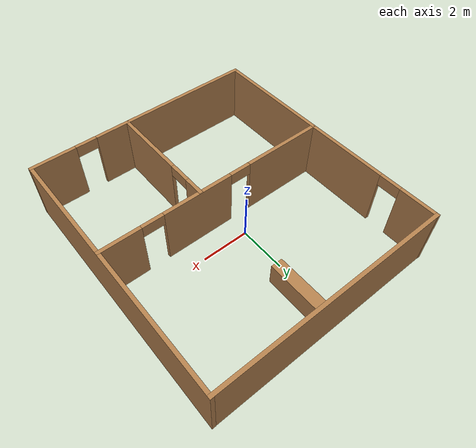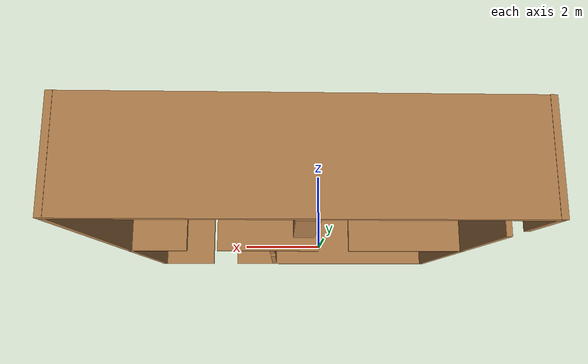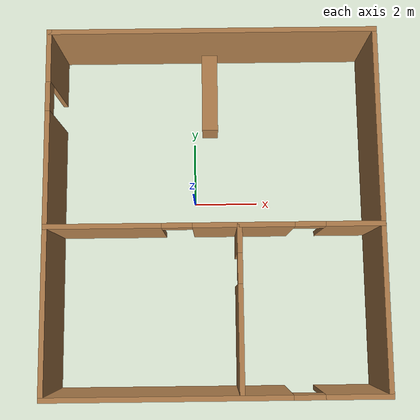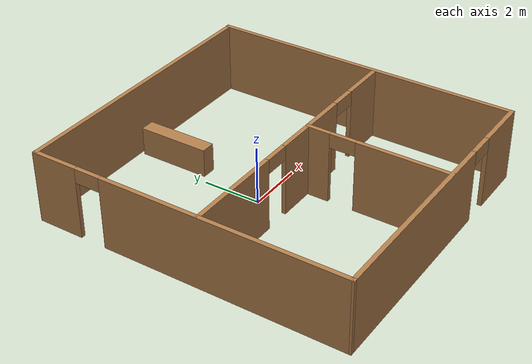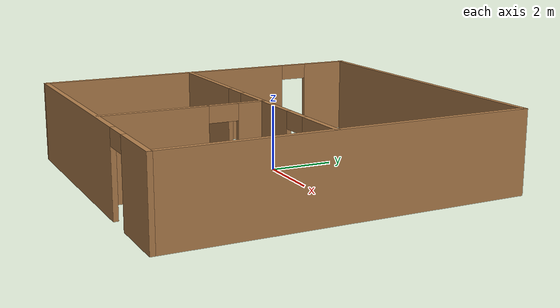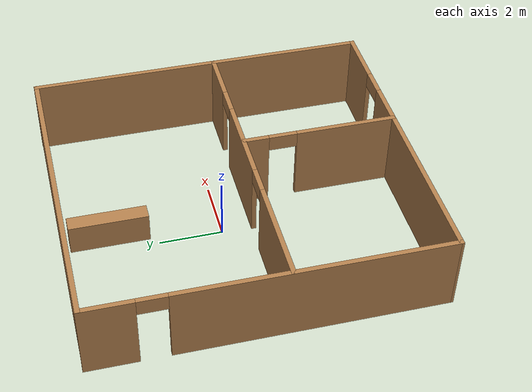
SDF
<?xml version='1.0'?>
<sdf version='1.6'>
  <model name='at_home_2019_empty'>
    <pose frame=''>0.5 -0.5 0 0 0 0</pose>

    <link name='box_link'>
      <pose frame=''>0.0 4 0.5 0 0 0</pose>
      <collision name='collision'>
        <max_contacts>10</max_contacts>
        <geometry>
          <box>
            <size>0.5 2.5 1</size>
          </box>
        </geometry>
      </collision>
      <visual name='visual'>
        <geometry>
          <box>
            <size>0.5 2.5 1</size>
          </box>
        </geometry>
        <material>
          <script>
            <name>Gazebo/Wood</name>
            <uri>file://media/materials/scripts/gazebo.material</uri>
          </script>
        </material>
      </visual>
    </link>

    <link name='Wall_11'>
      <pose frame=''>0.087 -0.5 0 0 0 3.14159</pose>
      <visual name='Wall_11_Visual_0'>
        <pose frame=''>-4.1285 0 1.25 0 -0 0</pose>
        <geometry>
          <box>
            <size>1.743 0.15 2.5</size>
          </box>
        </geometry>
        <material>
          <script>
            <uri>file://media/materials/scripts/gazebo.material</uri>
            <name>Gazebo/Wood</name>
          </script>
          <ambient>1 1 1 1</ambient>
        </material>
        <meta>
          <layer>0</layer>
        </meta>
      </visual>
      <collision name='Wall_11_Collision_0'>
        <geometry>
          <box>
            <size>1.743 0.15 2.5</size>
          </box>
        </geometry>
        <pose frame=''>-4.1285 0 1.25 0 -0 0</pose>
      </collision>
      <visual name='Wall_11_Visual_1'>
        <pose frame=''>-0.862163 0 1.25 0 -0 0</pose>
        <geometry>
          <box>
            <size>2.98967 0.15 2.5</size>
          </box>
        </geometry>
        <material>
          <script>
            <uri>file://media/materials/scripts/gazebo.material</uri>
            <name>Gazebo/Wood</name>
          </script>
          <ambient>1 1 1 1</ambient>
        </material>
        <meta>
          <layer>0</layer>
        </meta>
      </visual>
      <collision name='Wall_11_Collision_1'>
        <geometry>
          <box>
            <size>2.98967 0.15 2.5</size>
          </box>
        </geometry>
        <pose frame=''>-0.862163 0 1.25 0 -0 0</pose>
      </collision>
      <visual name='Wall_11_Visual_2'>
        <pose frame=''>3.26634 0 1.25 0 -0 0</pose>
        <geometry>
          <box>
            <size>3.46733 0.15 2.5</size>
          </box>
        </geometry>
        <material>
          <script>
            <uri>file://media/materials/scripts/gazebo.material</uri>
            <name>Gazebo/Wood</name>
          </script>
          <ambient>1 1 1 1</ambient>
        </material>
        <meta>
          <layer>0</layer>
        </meta>
      </visual>
      <collision name='Wall_11_Collision_2'>
        <geometry>
          <box>
            <size>3.46733 0.15 2.5</size>
          </box>
        </geometry>
        <pose frame=''>3.26634 0 1.25 0 -0 0</pose>
      </collision>
      <visual name='Wall_11_Visual_3'>
        <pose frame=''>-2.807 0 2.25 0 -0 0</pose>
        <geometry>
          <box>
            <size>0.9 0.15 0.5</size>
          </box>
        </geometry>
        <material>
          <script>
            <uri>file://media/materials/scripts/gazebo.material</uri>
            <name>Gazebo/Wood</name>
          </script>
          <ambient>1 1 1 1</ambient>
        </material>
        <meta>
          <layer>0</layer>
        </meta>
      </visual>
      <collision name='Wall_11_Collision_3'>
        <geometry>
          <box>
            <size>0.9 0.15 0.5</size>
          </box>
        </geometry>
        <pose frame=''>-2.807 0 2.25 0 -0 0</pose>
      </collision>
      <visual name='Wall_11_Visual_4'>
        <pose frame=''>1.08267 0 2.25 0 -0 0</pose>
        <geometry>
          <box>
            <size>0.9 0.15 0.5</size>
          </box>
        </geometry>
        <material>
          <script>
            <uri>file://media/materials/scripts/gazebo.material</uri>
            <name>Gazebo/Wood</name>
          </script>
          <ambient>1 1 1 1</ambient>
        </material>
        <meta>
          <layer>0</layer>
        </meta>
      </visual>
      <collision name='Wall_11_Collision_4'>
        <geometry>
          <box>
            <size>0.9 0.15 0.5</size>
          </box>
        </geometry>
        <pose frame=''>1.08267 0 2.25 0 -0 0</pose>
      </collision>
    </link>
    <link name='Wall_13'>
      <pose frame=''>0.830455 -2.95 0 0 -0 1.5708</pose>
      <visual name='Wall_13_Visual_0'>
        <pose frame=''>-0.879017 0 1.25 0 -0 0</pose>
        <geometry>
          <box>
            <size>3.24197 0.15 2.5</size>
          </box>
        </geometry>
        <material>
          <script>
            <uri>file://media/materials/scripts/gazebo.material</uri>
            <name>Gazebo/Wood</name>
          </script>
          <ambient>1 1 1 1</ambient>
        </material>
        <meta>
          <layer>0</layer>
        </meta>
      </visual>
      <collision name='Wall_13_Collision_0'>
        <geometry>
          <box>
            <size>3.24197 0.15 2.5</size>
          </box>
        </geometry>
        <pose frame=''>-0.879017 0 1.25 0 -0 0</pose>
      </collision>
      <visual name='Wall_13_Visual_1'>
        <pose frame=''>2.07098 0 1.25 0 -0 0</pose>
        <geometry>
          <box>
            <size>0.858033 0.15 2.5</size>
          </box>
        </geometry>
        <material>
          <script>
            <uri>file://media/materials/scripts/gazebo.material</uri>
            <name>Gazebo/Wood</name>
          </script>
          <ambient>1 1 1 1</ambient>
        </material>
        <meta>
          <layer>0</layer>
        </meta>
      </visual>
      <collision name='Wall_13_Collision_1'>
        <geometry>
          <box>
            <size>0.858033 0.15 2.5</size>
          </box>
        </geometry>
        <pose frame=''>2.07098 0 1.25 0 -0 0</pose>
      </collision>
      <visual name='Wall_13_Visual_2'>
        <pose frame=''>1.19197 0 2.25 0 -0 0</pose>
        <geometry>
          <box>
            <size>0.9 0.15 0.5</size>
          </box>
        </geometry>
        <material>
          <script>
            <uri>file://media/materials/scripts/gazebo.material</uri>
            <name>Gazebo/Wood</name>
          </script>
          <ambient>1 1 1 1</ambient>
        </material>
        <meta>
          <layer>0</layer>
        </meta>
      </visual>
      <collision name='Wall_13_Collision_2'>
        <geometry>
          <box>
            <size>0.9 0.15 0.5</size>
          </box>
        </geometry>
        <pose frame=''>1.19197 0 2.25 0 -0 0</pose>
      </collision>
    </link>
    <link name='Wall_6'>
      <collision name='Wall_6_Collision'>
        <geometry>
          <box>
            <size>10 0.15 2.5</size>
          </box>
        </geometry>
        <pose frame=''>0 0 1.25 0 -0 0</pose>
      </collision>
      <visual name='Wall_6_Visual'>
        <pose frame=''>0 0 1.25 0 -0 0</pose>
        <geometry>
          <box>
            <size>10 0.15 2.5</size>
          </box>
        </geometry>
        <material>
          <script>
            <uri>file://media/materials/scripts/gazebo.material</uri>
            <name>Gazebo/Wood</name>
          </script>
          <ambient>1 1 1 1</ambient>
        </material>
        <meta>
          <layer>0</layer>
        </meta>
      </visual>
      <pose frame=''>0.089544 5.44849 0 0 -0 0</pose>
    </link>
    <link name='Wall_7'>
      <collision name='Wall_7_Collision'>
        <geometry>
          <box>
            <size>11 0.15 2.5</size>
          </box>
        </geometry>
        <pose frame=''>0 0 1.25 0 -0 0</pose>
      </collision>
      <visual name='Wall_7_Visual'>
        <pose frame=''>0 0 1.25 0 -0 0</pose>
        <geometry>
          <box>
            <size>11 0.15 2.5</size>
          </box>
        </geometry>
        <material>
          <script>
            <uri>file://media/materials/scripts/gazebo.material</uri>
            <name>Gazebo/Wood</name>
          </script>
          <ambient>1 1 1 1</ambient>
        </material>
        <meta>
          <layer>0</layer>
        </meta>
      </visual>
      <pose frame=''>5.01454 0.031048 0 0 -0 -1.5708</pose>
    </link>
    <link name='Wall_8'>
      <pose frame=''>0.089544 -5.39395 0 0 -0 3.14159</pose>
      <visual name='Wall_8_Visual_0'>
        <pose frame=''>-4.03896 0 1.25 0 -0 0</pose>
        <geometry>
          <box>
            <size>1.92209 0.15 2.5</size>
          </box>
        </geometry>
        <material>
          <script>
            <uri>file://media/materials/scripts/gazebo.material</uri>
            <name>Gazebo/Wood</name>
          </script>
          <ambient>1 1 1 1</ambient>
        </material>
        <meta>
          <layer>0</layer>
        </meta>
      </visual>
      <collision name='Wall_8_Collision_0'>
        <geometry>
          <box>
            <size>1.92209 0.15 2.5</size>
          </box>
        </geometry>
        <pose frame=''>-4.03896 0 1.25 0 -0 0</pose>
      </collision>
      <visual name='Wall_8_Visual_1'>
        <pose frame=''>1.41104 0 1.25 0 -0 0</pose>
        <geometry>
          <box>
            <size>7.17791 0.15 2.5</size>
          </box>
        </geometry>
        <material>
          <script>
            <uri>file://media/materials/scripts/gazebo.material</uri>
            <name>Gazebo/Wood</name>
          </script>
          <ambient>1 1 1 1</ambient>
        </material>
        <meta>
          <layer>0</layer>
        </meta>
      </visual>
      <collision name='Wall_8_Collision_1'>
        <geometry>
          <box>
            <size>7.17791 0.15 2.5</size>
          </box>
        </geometry>
        <pose frame=''>1.41104 0 1.25 0 -0 0</pose>
      </collision>
      <visual name='Wall_8_Visual_2'>
        <pose frame=''>-2.62791 0 2.25 0 -0 0</pose>
        <geometry>
          <box>
            <size>0.9 0.15 0.5</size>
          </box>
        </geometry>
        <material>
          <script>
            <uri>file://media/materials/scripts/gazebo.material</uri>
            <name>Gazebo/Wood</name>
          </script>
          <ambient>1 1 1 1</ambient>
        </material>
        <meta>
          <layer>0</layer>
        </meta>
      </visual>
      <collision name='Wall_8_Collision_2'>
        <geometry>
          <box>
            <size>0.9 0.15 0.5</size>
          </box>
        </geometry>
        <pose frame=''>-2.62791 0 2.25 0 -0 0</pose>
      </collision>
    </link>
    <link name='Wall_9'>
      <pose frame=''>-4.83883 0.031047 0 0 -0 1.57142</pose>
      <visual name='Wall_9_Visual_0'>
        <pose frame=''>-1.26936 0 1.25 0 -0 0</pose>
        <geometry>
          <box>
            <size>8.46129 0.15 2.5</size>
          </box>
        </geometry>
        <material>
          <script>
            <uri>file://media/materials/scripts/gazebo.material</uri>
            <name>Gazebo/Wood</name>
          </script>
          <ambient>1 1 1 1</ambient>
        </material>
        <meta>
          <layer>0</layer>
        </meta>
      </visual>
      <collision name='Wall_9_Collision_0'>
        <geometry>
          <box>
            <size>8.46129 0.15 2.5</size>
          </box>
        </geometry>
        <pose frame=''>-1.26936 0 1.25 0 -0 0</pose>
      </collision>
      <visual name='Wall_9_Visual_1'>
        <pose frame=''>4.68065 0 1.25 0 -0 0</pose>
        <geometry>
          <box>
            <size>1.63871 0.15 2.5</size>
          </box>
        </geometry>
        <material>
          <script>
            <uri>file://media/materials/scripts/gazebo.material</uri>
            <name>Gazebo/Wood</name>
          </script>
          <ambient>1 1 1 1</ambient>
        </material>
        <meta>
          <layer>0</layer>
        </meta>
      </visual>
      <collision name='Wall_9_Collision_1'>
        <geometry>
          <box>
            <size>1.63871 0.15 2.5</size>
          </box>
        </geometry>
        <pose frame=''>4.68065 0 1.25 0 -0 0</pose>
      </collision>
      <visual name='Wall_9_Visual_2'>
        <pose frame=''>3.41129 0 2.25 0 -0 0</pose>
        <geometry>
          <box>
            <size>0.9 0.15 0.5</size>
          </box>
        </geometry>
        <material>
          <script>
            <uri>file://media/materials/scripts/gazebo.material</uri>
            <name>Gazebo/Wood</name>
          </script>
          <ambient>1 1 1 1</ambient>
        </material>
        <meta>
          <layer>0</layer>
        </meta>
      </visual>
      <collision name='Wall_9_Collision_2'>
        <geometry>
          <box>
            <size>0.9 0.15 0.5</size>
          </box>
        </geometry>
        <pose frame=''>3.41129 0 2.25 0 -0 0</pose>
      </collision>
    </link>
    <static>1</static>
  </model>
</sdf>
